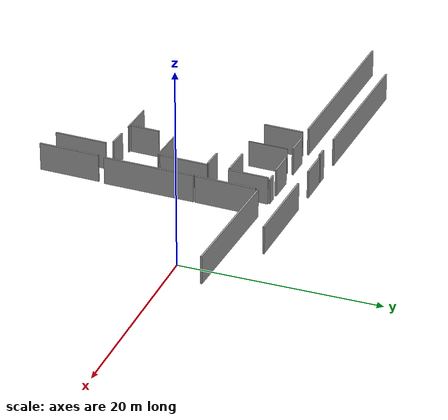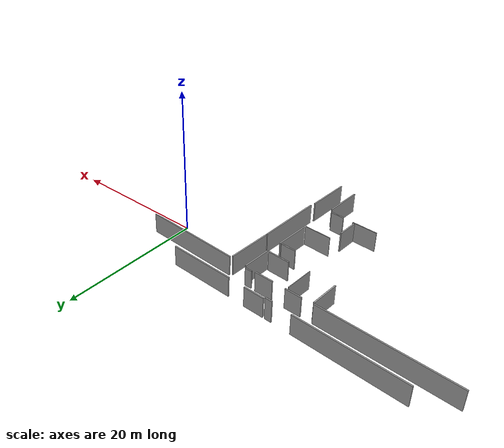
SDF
<sdf version="1.7">
 <world name="world">
  <scene>
   <ambient>0.8 0.8 0.8 1</ambient>
   <background>0 0 0 1</background>
   <grid>0</grid>
   <shadows>0</shadows>
   <grid>0</grid>
   <origin_visual>0</origin_visual>
  </scene>
  <light name="sun" type="directional">
   <cast_shadows>0</cast_shadows>
   <pose>0 0 10 0 -0 0</pose>
   <diffuse>0.8 0.8 0.8 1</diffuse>
   <specular>0.2 0.2 0.2 1</specular>
   <attenuation>
    <range>1000</range>
    <constant>0.9</constant>
    <linear>0.01</linear>
    <quadratic>0.001</quadratic>
   </attenuation>
   <direction>-0.5 0.1 -0.9</direction>
   <spot><inner_angle>0</inner_angle><outer_angle>0</outer_angle><falloff>0</falloff></spot>
  </light>
  <model name="campus_L1"><static>1</static><pose>-22000 -31500 0 0 -0 0</pose></model>
  <gravity>0 0 -9.8</gravity>
  <magnetic_field>6e-06 2.3e-05 -4.2e-05</magnetic_field>
  <atmosphere type="adiabatic"/>
  <physics type="ode">
   <max_step_size>0.001</max_step_size>
   <real_time_factor>1</real_time_factor>
   <real_time_update_rate>1000</real_time_update_rate>
  </physics>
  <spherical_coordinates>
   <surface_model>EARTH_WGS84</surface_model>
   <latitude_deg>0</latitude_deg>
   <longitude_deg>0</longitude_deg>
   <elevation>0</elevation>
   <heading_deg>0</heading_deg>
  </spherical_coordinates>
  <audio><device>default</device></audio>
  <model name="unit_box">
   <pose>-4.2717 3.60343 1.53649 -2e-06 -0.013785 -0.035971</pose>
   <link name="link">
    <inertial>
     <mass>1</mass>
     <inertia>
      <ixx>0.166667</ixx>
      <ixy>0</ixy>
      <ixz>0</ixz>
      <iyy>0.166667</iyy>
      <iyz>0</iyz>
      <izz>0.166667</izz>
     </inertia>
    </inertial>
    <collision name="collision"><geometry><box><size>13.4771 0.177092 2.88933</size></box></geometry></collision>
    <visual name="visual">
     <geometry><box><size>13.4771 0.177092 2.88933</size></box></geometry>
     <material>
      <script><name>Gazebo/Grey</name><uri>file://media/materials/scripts/gazebo.material</uri></script>
     </material>
    </visual>
   </link>
  </model>
  <model name="unit_box_clone">
   <pose>-9.08376 6.89658 1.50151 -0.00131 -0.012876 -0.022632</pose>
   <link name="link">
    <inertial>
     <mass>1</mass>
     <inertia>
      <ixx>0.166667</ixx>
      <ixy>0</ixy>
      <ixz>0</ixz>
      <iyy>0.166667</iyy>
      <iyz>0</iyz>
      <izz>0.166667</izz>
     </inertia>
    </inertial>
    <collision name="collision"><geometry><box><size>8.973 0.177092 2.88933</size></box></geometry></collision>
    <visual name="visual">
     <geometry><box><size>8.973 0.177092 2.88933</size></box></geometry>
     <material>
      <script><name>Gazebo/Grey</name><uri>file://media/materials/scripts/gazebo.material</uri></script>
     </material>
    </visual>
   </link>
  </model>
  <model name="unit_box_clone_0">
   <pose>-16.5469 4.17725 1.44375 -0 -0 -0.028211</pose>
   <link name="link">
    <inertial>
     <mass>1</mass>
     <inertia>
      <ixx>0.166667</ixx>
      <ixy>0</ixy>
      <ixz>0</ixz>
      <iyy>0.166667</iyy>
      <iyz>0</iyz>
      <izz>0.166667</izz>
     </inertia>
    </inertial>
    <collision name="collision"><geometry><box><size>2.61072 0.177092 2.88933</size></box></geometry></collision>
    <visual name="visual">
     <geometry><box><size>2.61072 0.177092 2.88933</size></box></geometry>
     <material>
      <script><name>Gazebo/Grey</name><uri>file://media/materials/scripts/gazebo.material</uri></script>
     </material>
    </visual>
   </link>
  </model>
  <model name="unit_box_clone_clone">
   <pose>-17.4696 7.17129 1.44375 -0 -0 -0.027294</pose>
   <link name="link">
    <inertial>
     <mass>1</mass>
     <inertia>
      <ixx>0.166667</ixx>
      <ixy>0</ixy>
      <ixz>0</ixz>
      <iyy>0.166667</iyy>
      <iyz>0</iyz>
      <izz>0.166667</izz>
     </inertia>
    </inertial>
    <collision name="collision"><geometry><box><size>2.92107 0.177092 2.88933</size></box></geometry></collision>
    <visual name="visual">
     <geometry><box><size>2.92107 0.177092 2.88933</size></box></geometry>
     <material>
      <script><name>Gazebo/Grey</name><uri>file://media/materials/scripts/gazebo.material</uri></script>
     </material>
    </visual>
   </link>
  </model>
  <model name="unit_box_clone_clone_0">
   <pose>-30.3556 7.60766 1.44375 6e-06 -1e-06 -0.035404</pose>
   <link name="link">
    <inertial>
     <mass>1</mass>
     <inertia>
      <ixx>0.166667</ixx>
      <ixy>0</ixy>
      <ixz>0</ixz>
      <iyy>0.166667</iyy>
      <iyz>0</iyz>
      <izz>0.166667</izz>
     </inertia>
    </inertial>
    <collision name="collision"><geometry><box><size>14.9825 0.177092 2.88933</size></box></geometry></collision>
    <visual name="visual">
     <geometry><box><size>14.9825 0.177092 2.88933</size></box></geometry>
     <material>
      <script><name>Gazebo/Grey</name><uri>file://media/materials/scripts/gazebo.material</uri></script>
     </material>
    </visual>
   </link>
  </model>
  <model name="unit_box_clone_clone_0_clone">
   <pose>-32.9561 4.72526 1.57603 1e-06 -1e-06 -0.032426</pose>
   <link name="link">
    <inertial>
     <mass>1</mass>
     <inertia>
      <ixx>0.166667</ixx>
      <ixy>0</ixy>
      <ixz>0</ixz>
      <iyy>0.166667</iyy>
      <iyz>0</iyz>
      <izz>0.166667</izz>
     </inertia>
    </inertial>
    <collision name="collision"><geometry><box><size>18.3075 0.177092 2.88933</size></box></geometry></collision>
    <visual name="visual">
     <geometry><box><size>18.3075 0.177092 2.88933</size></box></geometry>
     <material>
      <script><name>Gazebo/Grey</name><uri>file://media/materials/scripts/gazebo.material</uri></script>
     </material>
    </visual>
   </link>
  </model>
  <model name="unit_box_clone_clone_clone">
   <pose>-20.9127 4.2945 1.44375 -0 1e-06 -0.028892</pose>
   <link name="link">
    <inertial>
     <mass>1</mass>
     <inertia>
      <ixx>0.166667</ixx>
      <ixy>0</ixy>
      <ixz>0</ixz>
      <iyy>0.166667</iyy>
      <iyz>0</iyz>
      <izz>0.166667</izz>
     </inertia>
    </inertial>
    <collision name="collision"><geometry><box><size>2.34889 0.177092 2.88933</size></box></geometry></collision>
    <visual name="visual">
     <geometry><box><size>2.34889 0.177092 2.88933</size></box></geometry>
     <material>
      <script><name>Gazebo/Grey</name><uri>file://media/materials/scripts/gazebo.material</uri></script>
     </material>
    </visual>
   </link>
  </model>
  <model name="unit_box_clone_0_clone">
   <pose>-13.6625 1.9132 1.44375 0 -1e-06 -1.60724</pose>
   <link name="link">
    <inertial>
     <mass>1</mass>
     <inertia>
      <ixx>0.166667</ixx>
      <ixy>0</ixy>
      <ixz>0</ixz>
      <iyy>0.166667</iyy>
      <iyz>0</iyz>
      <izz>0.166667</izz>
     </inertia>
    </inertial>
    <collision name="collision"><geometry><box><size>4.0922 0.177092 2.88933</size></box></geometry></collision>
    <visual name="visual">
     <geometry><box><size>4.0922 0.177092 2.88933</size></box></geometry>
     <material>
      <script><name>Gazebo/Grey</name><uri>file://media/materials/scripts/gazebo.material</uri></script>
     </material>
    </visual>
   </link>
  </model>
  <model name="unit_box_clone_0_clone_clone">
   <pose>-14.0046 -4.84561 1.44376 2e-06 2e-06 -1.60661</pose>
   <link name="link">
    <inertial>
     <mass>1</mass>
     <inertia>
      <ixx>0.166667</ixx>
      <ixy>0</ixy>
      <ixz>0</ixz>
      <iyy>0.166667</iyy>
      <iyz>0</iyz>
      <izz>0.166667</izz>
     </inertia>
    </inertial>
    <collision name="collision"><geometry><box><size>4.94935 0.177092 2.88933</size></box></geometry></collision>
    <visual name="visual">
     <geometry><box><size>4.94935 0.177092 2.88933</size></box></geometry>
     <material>
      <script><name>Gazebo/Grey</name><uri>file://media/materials/scripts/gazebo.material</uri></script>
     </material>
    </visual>
   </link>
  </model>
  <model name="unit_box_clone_0_clone_clone_0">
   <pose>-14.5589 -15.8281 1.44376 -2e-06 -0 -1.60657</pose>
   <link name="link">
    <inertial>
     <mass>1</mass>
     <inertia>
      <ixx>0.166667</ixx>
      <ixy>0</ixy>
      <ixz>0</ixz>
      <iyy>0.166667</iyy>
      <iyz>0</iyz>
      <izz>0.166667</izz>
     </inertia>
    </inertial>
    <collision name="collision"><geometry><box><size>5.38025 0.177092 2.88933</size></box></geometry></collision>
    <visual name="visual">
     <geometry><box><size>5.38025 0.177092 2.88933</size></box></geometry>
     <material>
      <script><name>Gazebo/Grey</name><uri>file://media/materials/scripts/gazebo.material</uri></script>
     </material>
    </visual>
   </link>
  </model>
  <model name="unit_box_clone_1">
   <pose>-11.5973 -7.51512 1.44376 1e-06 1e-06 1.54357</pose>
   <link name="link">
    <inertial>
     <mass>1</mass>
     <inertia>
      <ixx>0.166667</ixx>
      <ixy>0</ixy>
      <ixz>0</ixz>
      <iyy>0.166667</iyy>
      <iyz>0</iyz>
      <izz>0.166667</izz>
     </inertia>
    </inertial>
    <collision name="collision"><geometry><box><size>9.36707 0.177092 2.88933</size></box></geometry></collision>
    <visual name="visual">
     <geometry><box><size>9.36707 0.177092 2.88933</size></box></geometry>
     <material>
      <script><name>Gazebo/Grey</name><uri>file://media/materials/scripts/gazebo.material</uri></script>
     </material>
    </visual>
   </link>
  </model>
  <model name="unit_box_clone_0_clone_clone_1">
   <pose>-11.3453 0.450375 1.44375 0 -0 -1.61114</pose>
   <link name="link">
    <inertial>
     <mass>1</mass>
     <inertia>
      <ixx>0.166667</ixx>
      <ixy>0</ixy>
      <ixz>0</ixz>
      <iyy>0.166667</iyy>
      <iyz>0</iyz>
      <izz>0.166667</izz>
     </inertia>
    </inertial>
    <collision name="collision"><geometry><box><size>6.30571 0.177092 2.88933</size></box></geometry></collision>
    <visual name="visual">
     <geometry><box><size>6.30571 0.177092 2.88933</size></box></geometry>
     <material>
      <script><name>Gazebo/Grey</name><uri>file://media/materials/scripts/gazebo.material</uri></script>
     </material>
    </visual>
   </link>
  </model>
  <model name="unit_box_clone_0_clone_clone_clone">
   <pose>-15.2444 -2.37503 1.44375 0 1e-06 -0.035816</pose>
   <link name="link">
    <inertial>
     <mass>1</mass>
     <inertia>
      <ixx>0.166667</ixx>
      <ixy>0</ixy>
      <ixz>0</ixz>
      <iyy>0.166667</iyy>
      <iyz>0</iyz>
      <izz>0.166667</izz>
     </inertia>
    </inertial>
    <collision name="collision"><geometry><box><size>2.15929 0.177092 2.88933</size></box></geometry></collision>
    <visual name="visual">
     <geometry><box><size>2.15929 0.177092 2.88933</size></box></geometry>
     <material>
      <script><name>Gazebo/Grey</name><uri>file://media/materials/scripts/gazebo.material</uri></script>
     </material>
    </visual>
   </link>
  </model>
  <model name="unit_box_clone_0_clone_clone_2">
   <pose>-15.5117 -0.032619 1.44375 0 -0 3.1012</pose>
   <link name="link">
    <inertial>
     <mass>1</mass>
     <inertia>
      <ixx>0.166667</ixx>
      <ixy>0</ixy>
      <ixz>0</ixz>
      <iyy>0.166667</iyy>
      <iyz>0</iyz>
      <izz>0.166667</izz>
     </inertia>
    </inertial>
    <collision name="collision"><geometry><box><size>3.1396 0.177092 2.88933</size></box></geometry></collision>
    <visual name="visual">
     <geometry><box><size>3.1396 0.177092 2.88933</size></box></geometry>
     <material>
      <script><name>Gazebo/Grey</name><uri>file://media/materials/scripts/gazebo.material</uri></script>
     </material>
    </visual>
   </link>
  </model>
  <model name="unit_box_0">
   <pose>-19.6585 7.22098 1.56203 -1e-06 -0 -0.041379</pose>
   <link name="link">
    <inertial>
     <mass>1</mass>
     <inertia>
      <ixx>0.166667</ixx>
      <ixy>0</ixy>
      <ixz>0</ixz>
      <iyy>0.166667</iyy>
      <iyz>0</iyz>
      <izz>0.166667</izz>
     </inertia>
    </inertial>
    <collision name="collision"><geometry><box><size>1 0.173074 3.1259</size></box></geometry></collision>
    <visual name="visual">
     <geometry><box><size>1 0.173074 3.1259</size></box></geometry>
     <material>
      <script><name>Gazebo/Grey</name><uri>file://media/materials/scripts/gazebo.material</uri></script>
     </material>
    </visual>
   </link>
  </model>
  <model name="unit_box_1">
   <pose>-14.1515 4.07817 1.3152 -1e-06 0 -6.8e-05</pose>
   <link name="link">
    <inertial>
     <mass>1</mass>
     <inertia>
      <ixx>0.166667</ixx>
      <ixy>0</ixy>
      <ixz>0</ixz>
      <iyy>0.166667</iyy>
      <iyz>0</iyz>
      <izz>0.166667</izz>
     </inertia>
    </inertial>
    <collision name="collision"><geometry><box><size>1 0.15319 2.63224</size></box></geometry></collision>
    <visual name="visual">
     <geometry><box><size>1 0.15319 2.63224</size></box></geometry>
     <material>
      <script><name>Gazebo/Grey</name><uri>file://media/materials/scripts/gazebo.material</uri></script>
     </material>
    </visual>
   </link>
  </model>
  <model name="unit_box_2">
   <pose>-23.6032 1.93366 1.37453 0 0 -0.035957</pose>
   <link name="link">
    <inertial>
     <mass>1</mass>
     <inertia>
      <ixx>0.166667</ixx>
      <ixy>0</ixy>
      <ixz>0</ixz>
      <iyy>0.166667</iyy>
      <iyz>0</iyz>
      <izz>0.166667</izz>
     </inertia>
    </inertial>
    <collision name="collision"><geometry><box><size>0.185605 4.06735 2.75088</size></box></geometry></collision>
    <visual name="visual">
     <geometry><box><size>0.185605 4.06735 2.75088</size></box></geometry>
     <material>
      <script><name>Gazebo/Grey</name><uri>file://media/materials/scripts/gazebo.material</uri></script>
     </material>
    </visual>
   </link>
  </model>
  <model name="unit_box_clone_0_clone_clone_0_clone">
   <pose>-12.0053 -15.9711 1.44376 3.8e-05 -1e-06 -1.60663</pose>
   <link name="link">
    <inertial>
     <mass>1</mass>
     <inertia>
      <ixx>0.166667</ixx>
      <ixy>0</ixy>
      <ixz>0</ixz>
      <iyy>0.166667</iyy>
      <iyz>0</iyz>
      <izz>0.166667</izz>
     </inertia>
    </inertial>
    <collision name="collision"><geometry><box><size>6.26266 0.177092 2.88933</size></box></geometry></collision>
    <visual name="visual">
     <geometry><box><size>6.26266 0.177092 2.88933</size></box></geometry>
     <material>
      <script><name>Gazebo/Grey</name><uri>file://media/materials/scripts/gazebo.material</uri></script>
     </material>
    </visual>
   </link>
  </model>
  <model name="unit_box_clone_0_clone_clone_0_clone_0">
   <pose>-15.8312 -12.4994 1.44376 0 -0 3.0809</pose>
   <link name="link">
    <inertial>
     <mass>1</mass>
     <inertia>
      <ixx>0.166667</ixx>
      <ixy>0</ixy>
      <ixz>0</ixz>
      <iyy>0.166667</iyy>
      <iyz>0</iyz>
      <izz>0.166667</izz>
     </inertia>
    </inertial>
    <collision name="collision"><geometry><box><size>1.90991 0.177092 2.88933</size></box></geometry></collision>
    <visual name="visual">
     <geometry><box><size>1.90991 0.177092 2.88933</size></box></geometry>
     <material>
      <script><name>Gazebo/Grey</name><uri>file://media/materials/scripts/gazebo.material</uri></script>
     </material>
    </visual>
   </link>
  </model>
  <model name="unit_box_clone_0_clone_clone_0_clone_1">
   <pose>-18.5307 -10.6952 1.44376 0 -0 -1.60566</pose>
   <link name="link">
    <inertial>
     <mass>1</mass>
     <inertia>
      <ixx>0.166667</ixx>
      <ixy>0</ixy>
      <ixz>0</ixz>
      <iyy>0.166667</iyy>
      <iyz>0</iyz>
      <izz>0.166667</izz>
     </inertia>
    </inertial>
    <collision name="collision"><geometry><box><size>2.99704 0.177092 2.88933</size></box></geometry></collision>
    <visual name="visual">
     <geometry><box><size>2.99704 0.177092 2.88933</size></box></geometry>
     <material>
      <script><name>Gazebo/Grey</name><uri>file://media/materials/scripts/gazebo.material</uri></script>
     </material>
    </visual>
   </link>
  </model>
  <model name="unit_box_clone_0_clone_clone_0_clone_2">
   <pose>-16.0763 -7.47837 1.44376 -2.2e-05 -0 3.0989</pose>
   <link name="link">
    <inertial>
     <mass>1</mass>
     <inertia>
      <ixx>0.166667</ixx>
      <ixy>0</ixy>
      <ixz>0</ixz>
      <iyy>0.166667</iyy>
      <iyz>0</iyz>
      <izz>0.166667</izz>
     </inertia>
    </inertial>
    <collision name="collision"><geometry><box><size>3.88105 0.0971672 2.88933</size></box></geometry></collision>
    <visual name="visual">
     <geometry><box><size>3.88105 0.0971672 2.88933</size></box></geometry>
     <material>
      <script><name>Gazebo/Grey</name><uri>file://media/materials/scripts/gazebo.material</uri></script>
     </material>
    </visual>
   </link>
  </model>
  <model name="unit_box_2_clone">
   <pose>-19.8593 1.68109 1.37452 -0 0.0001 -0.035888</pose>
   <link name="link">
    <inertial>
     <mass>1</mass>
     <inertia>
      <ixx>0.166667</ixx>
      <ixy>0</ixy>
      <ixz>0</ixz>
      <iyy>0.166667</iyy>
      <iyz>0</iyz>
      <izz>0.166667</izz>
     </inertia>
    </inertial>
    <collision name="collision"><geometry><box><size>0.0878742 4.06735 2.75088</size></box></geometry></collision>
    <visual name="visual">
     <geometry><box><size>0.0878742 4.06735 2.75088</size></box></geometry>
     <material>
      <script><name>Gazebo/Grey</name><uri>file://media/materials/scripts/gazebo.material</uri></script>
     </material>
    </visual>
   </link>
  </model>
  <model name="unit_box_clone_0_clone_clone_0_clone_0_clone">
   <pose>-20.0854 -12.2918 1.44376 1e-06 0 3.10578</pose>
   <link name="link">
    <inertial>
     <mass>1</mass>
     <inertia>
      <ixx>0.166667</ixx>
      <ixy>0</ixy>
      <ixz>0</ixz>
      <iyy>0.166667</iyy>
      <iyz>0</iyz>
      <izz>0.166667</izz>
     </inertia>
    </inertial>
    <collision name="collision"><geometry><box><size>3.67146 0.114381 2.88933</size></box></geometry></collision>
    <visual name="visual">
     <geometry><box><size>3.67146 0.114381 2.88933</size></box></geometry>
     <material>
      <script><name>Gazebo/Grey</name><uri>file://media/materials/scripts/gazebo.material</uri></script>
     </material>
    </visual>
   </link>
  </model>
  <offset>22000 31500 0 0 0 0</offset>
  <crs>EPSG:3414</crs>
 </world>
</sdf>
